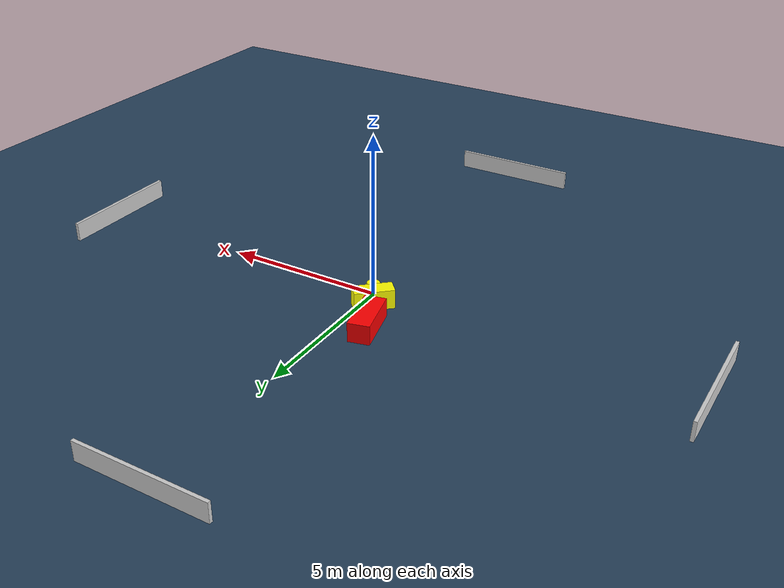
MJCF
<?xml version="1.0" ?>
<mujoco model="generated_environment">
  <option timestep="0.01" integrator="RK4" cone="elliptic"/>
  <default>
    <geom density="1"/>
  </default>
  <asset>
    <texture builtin="gradient" height="3072" name="skybox" rgb1="0.3 0.5 0.7" rgb2="0 0 0" type="skybox" width="512"/>
    <texture builtin="checker" height="300" name="groundplane" rgb1="0.2 0.3 0.4" rgb2="0.1 0.2 0.3" type="2d" width="300"/>
    <material name="groundplane" reflectance="0.2" texrepeat="5 5" texture="groundplane"/>
  </asset>
  <worldbody>
    <light dir="0 0 -1" directional="true" pos="0 0 1.5"/>
    <geom condim="3" friction="0.5 0.005 0.001" material="groundplane" name="floor" pos="0 0 0" size="0 0 0.05" type="plane"/>
    <body name="walls">
      <geom name="wall_1" condim="4" pos="-10.0 0.0 0.3" rgba="0.800000011920929 0.800000011920929 0.800000011920929 1.0" size="0.05 2.0 0.3" type="box"/>
      <geom name="wall_2" condim="4" pos="10.0 0.0 0.3" rgba="0.800000011920929 0.800000011920929 0.800000011920929 1.0" size="0.05 2.0 0.3" type="box"/>
      <geom name="wall_3" condim="4" pos="0.0 -10.0 0.3" rgba="0.800000011920929 0.800000011920929 0.800000011920929 1.0" size="2.0 0.05 0.3" type="box"/>
      <geom name="wall_4" condim="4" pos="0.0 10.0 0.3" rgba="0.800000011920929 0.800000011920929 0.800000011920929 1.0" size="2.0 0.05 0.3" type="box"/>
    </body>
    <body name="robot">
      <joint name="joint_x" type="slide" pos="0 0 0" axis="1 0 0"/>
      <joint name="joint_y" type="slide" pos="0 0 0" axis="0 1 0"/>
      <geom name="robot" type="cylinder" pos="0.0 0.0 0.2" size="0.2 0.2 0.0" mass="5.0" friction="1.0 0.005 0.0001" condim="4" rgba="1.0 1.0 0.0 1.0"/>
    </body>
    <body name="obstacle_1_movable">
      <geom name="obstacle_1_movable" condim="4" pos="-0.33933098834574704 0.57662111449398 0.3" euler="0 0 132.33019212387103" friction="0.0 0.005 0.001" rgba="1.0 1.0 0.0 1.0" size="0.24531904480114447 0.6018905868999943 0.3" type="box" mass="0.1"/>
      <joint type="free"/>
    </body>
    <body name="obstacle_2_static">
      <geom name="obstacle_2_static" condim="4" pos="-0.832530706001929 1.72013028729858 0.3" euler="0 0 13.610374568123312" friction="0.0 0.005 0.001" rgba="1.0 0.0 0.0 1.0" size="0.3255720350694926 0.7887227647585804 0.3" type="box"/>
    </body>
  </worldbody>
  <actuator>
    <motor name="actuator_x" joint="joint_x" gear="1" ctrlrange="-1 1"/>
    <motor name="actuator_y" joint="joint_y" gear="1" ctrlrange="-1 1"/>
  </actuator>
</mujoco>
